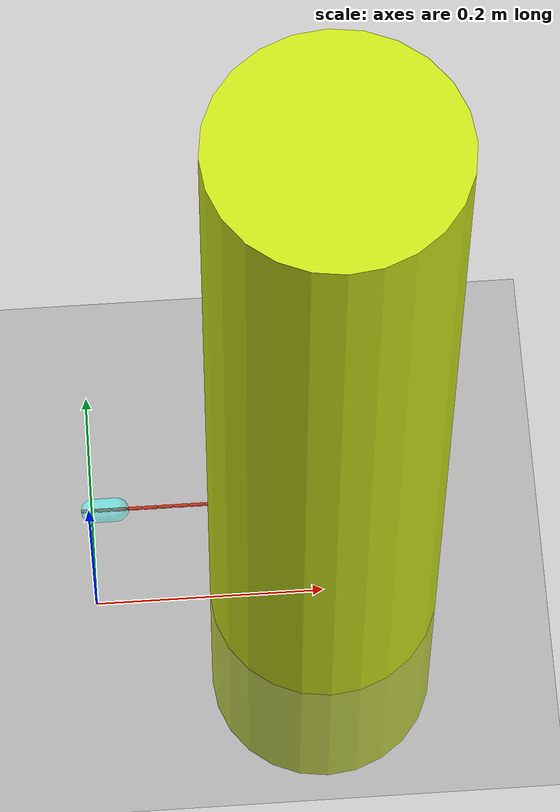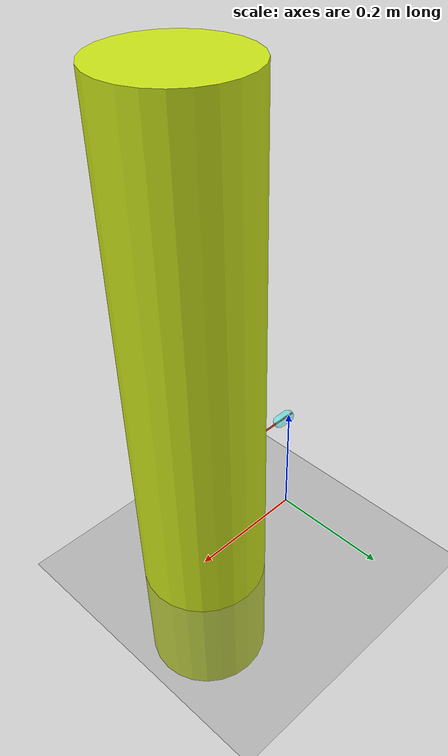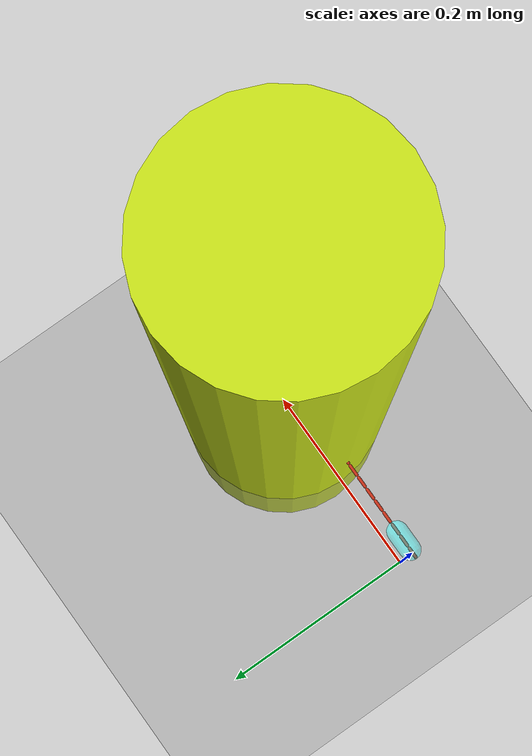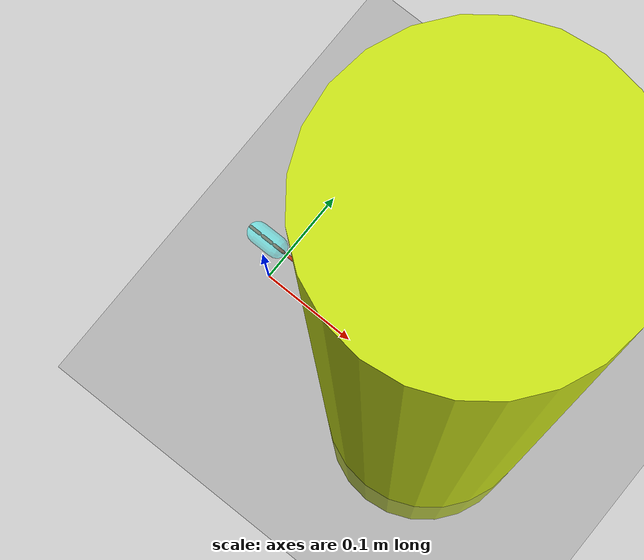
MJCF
<mujoco model="WhiskerSegmented">
<option timestep = "0.0002"></option>
  <include file="Backdrop.xml"/>

  <option gravity="0 0 0"/>

  <extension>
    <plugin plugin="mujoco.elasticity.cable"/>
  </extension>

  <statistic center="0 0 0.2" extent="1"/>

  <compiler autolimits="true"/>

  <visual>
    <global elevation="0"/>
  </visual>

  <default>
    <geom solref="0.01 1" solimp=".95 .99 .0001"/>
  </default>

  <worldbody>

<body name = "WhiskerBody" pos = " 0.0 -0 0.2" >

    <body name ="Seg0" pos = " 0 0 0">
   <geom name="Seg0_geom" type="capsule" size="0.0015 0.005" rgba="0.8 0.2 0.1 1" mass="1e-4" pos=" 0.0 0 0" euler="0 90 0" />
    <site name="segmented_whis_base_site" type="capsule" size="0.01 0.01" rgba="0 1 1 0.4" euler = "0 90 0" pos = "0.0135 0.0 0"/>
   <joint name="hinge0" type="hinge" axis="0 0 1" pos="-0.005 0 0" range="0 360" stiffness="0.924" damping="0.01" springref="0"/>

    <body name ="Seg1" pos = " 0 0 0">
    <joint name="hinge1" type="hinge" axis="0 0 1" pos="0.0065 0 0" range="-90 90" stiffness="0.924" damping="0.01" springref="0" />
    <geom name="Seg1_geom" type="capsule" size="0.0015 0.005" rgba="0.8 0.2 0.1 1" mass="1e-4" pos=" 0.013 0 0" euler="0 90 0" />

    <body name ="Seg2" pos = " 0 0 0">
    <joint name="hinge2" type="hinge" axis="0 0 1" pos="0.0195 0 0" range="-90 90 " stiffness="0.924" damping="0.01" springref="0"/>
    <geom name="Seg2_geom" type="capsule" size="0.0015 0.005" rgba="0.8 0.2 0.1 1" mass="1e-4" pos=" 0.026 0 0" euler="0 90 0" />

    <body name ="Seg3" pos = " 0 0 0">
    <joint name="hinge3" type="hinge" axis="0 0 1" pos="0.0325 0 0" range="-90 90" stiffness="0.924" damping="0.01" springref="0" />
    <geom name="Seg3_geom" type="capsule" size="0.0015 0.005" rgba="0.8 0.2 0.1 1" mass="1e-4" pos=" 0.039 0 0" euler="0 90 0" />

    <body name ="Seg4" pos = " 0 0 0">
    <joint name="hinge4" type="hinge" axis="0 0 1" pos="0.0455 0 0" range="-90 90" stiffness="0.924" damping="0.01" springref="0"/>
    <geom name="Seg4_geom" type="capsule" size="0.0015 0.005" rgba="0.8 0.2 0.1 1" mass="1e-4" pos=" 0.052 0 0" euler="0 90 0" />

    <body name ="Seg5" pos = " 0 0 0">
    <joint name="hinge5" type="hinge" axis="0 0 1" pos="0.0585 0 0" range="-90 90" stiffness="0.924" damping="0.01" springref="0" />
    <geom name="Seg5_geom" type="capsule" size="0.0015 0.005" rgba="0.8 0.2 0.1 1" mass="1e-4" pos=" 0.065 0 0" euler="0 90 0" />

    <body name ="Seg6" pos = " 0 0 0">
    <joint name="hinge6" type="hinge" axis="0 0 1" pos="0.0715 0 0" range="-90 90" stiffness="0.924" damping="0.01" springref="0"/>
    <geom name="Seg6_geom" type="capsule" size="0.0015 0.005" rgba="0.8 0.2 0.1 1" mass="1e-4" pos=" 0.078 0 0" euler="0 90 0" />

    <body name ="Seg7" pos = " 0 0 0">
    <joint name="hinge7" type="hinge" axis="0 0 1" pos="0.0845 0 0" range="-90 90" stiffness="0.924" damping="0.01" springref="0"/>
    <geom name="Seg7_geom" type="capsule" size="0.0015 0.005" rgba="0.8 0.2 0.1 1" mass="1e-4" pos=" 0.091 0 0" euler="0 90 0" />

    <body name ="Seg8" pos = " 0 0 0">
    <joint name="hinge8" type="hinge" axis="0 0 1" pos="0.0975 0 0" range="-90 90" stiffness="0.924" damping="0.01"  springref="0"/>
    <geom name="Seg8_geom" type="capsule" size="0.0015 0.005" rgba="0.8 0.2 0.1 1" mass="1e-4" pos=" 0.104 0 0" euler="0 90 0" />

    <body name ="Seg9" pos = " 0 0 0">
    <joint name="hinge9" type="hinge" axis="0 0 1" pos="0.1105 0 0" range="-90 90" stiffness="0.924" damping="0.01" springref="0"/>
    <geom name="Seg9_geom" type="capsule" size="0.0015 0.005" rgba="0.8 0.2 0.1 1" mass="1e-4" pos=" 0.117 0 0" euler="0 90 0"/>

   <body name ="Seg10" pos = " 0 0 0">
    <joint name="hinge10" type="hinge" axis="0 0 1" pos="0.1235 0 0" range="-90 90" stiffness="0.924" damping="0.01" springref="0" />
    <geom name="Seg10_geom" type="capsule" size="0.0015 0.005" rgba="0.8 0.2 0.1 1" mass="1e-4" pos=" 0.13 0 0" euler="0 90 0" />

   <body name ="Seg11" pos = " 0 0 0">
    <joint name="hinge11" type="hinge" axis="0 0 1" pos="0.1365 0 0" range="-90 90" stiffness="0.954" damping="0.01" springref="0"/>
    <geom name="Seg11_geom" type="capsule" size="0.0015 0.005" rgba="0.8 0.2 0.1 1" mass="1e-4" pos=" 0.143 0 0" euler="0 90 0" />

   <body name ="Seg12" pos = " 0 0 0">
    <joint name="hinge12" type="hinge" axis="0 0 1" pos="0.1495 0 0" range="-90 90" stiffness="0.924" damping="0.01" springref="0"/>
    <geom name="Seg12_geom" type="capsule" size="0.0015 0.005" rgba="0.8 0.2 0.1 1" mass="1e-4" pos=" 0.156 0 0" euler="0 90 0" />

   <body name ="Seg13" pos = " 0 0 0">
    <joint name="hinge13" type="hinge" axis="0 0 1" pos="0.1625 0 0" range="-90 90" stiffness="0.924" damping="0.01" springref="0"/>
    <geom name="Seg13_geom" type="capsule" size="0.0015 0.005" rgba="0.8 0.2 0.1 1" mass="1e-4" pos=" 0.169 0 0" euler="0 90 0" />

    <body name ="Seg14" pos = " 0 0 0">
    <joint name="hinge14" type="hinge" axis="0 0 1" pos="0.1755 0 0" range="-90 90" stiffness="0.924" damping="0.01" springref="0"/>
    <geom name="Seg14_geom" type="capsule" size="0.0015 0.005" rgba="0.8 0.2 0.1 1" mass="1e-4" pos=" 0.182 0 0" euler="0 90 0" />

    <body name ="Seg15" pos = " 0 0 0">
    <joint name="hinge15" type="hinge" axis="0 0 1" pos="0.1885 0 0" range="-90 90" stiffness="0.924" damping="0.01" springref="0"/>
    <geom name="Seg15_geom" type="capsule" size="0.0015 0.005" rgba="0.8 0.2 0.1 1" mass="1e-4" pos=" 0.195 0 0" euler="0 90 0" />

    </body>
    </body>
    </body>
    </body>
    </body>
    </body>
    </body>

    </body>
    </body>
    </body>
    </body>
    </body>
    </body>
    </body>
    </body>
    </body>
    </body>

    <geom name = "testbox" type = "cylinder" size="0.1 0.5" rgba=".8 .9 .1 1" density= "1000" pos = "0.2 0 0.3"/>

    </worldbody>

  <sensor>

        <force name = "manual_base_force_sensor" site="segmented_whis_base_site" />
        <torque name ="manual_base_torque_sensor" site="segmented_whis_base_site" />

    </sensor>

</mujoco>

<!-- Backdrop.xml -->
<mujoco>

  <compiler meshdir="asset" texturedir="asset"/>

  <statistic meansize=".05"/>

  <worldbody>
    <light diffuse=".4 .2 .4" specular="0.2 0.1 0.1" pos="0 0 2.0" dir="0 0 -1" castshadow="false"/>
    <light directional="true" diffuse=".8 .8 .8" specular="0.2 0.2 0.2" pos="0 0 4" dir="0 0 -1"/>
    <geom name="ground" type="plane" size="0 0 1" pos="0 0 0" quat="1 0 0 0" condim="1"/>
  </worldbody>
</mujoco>
